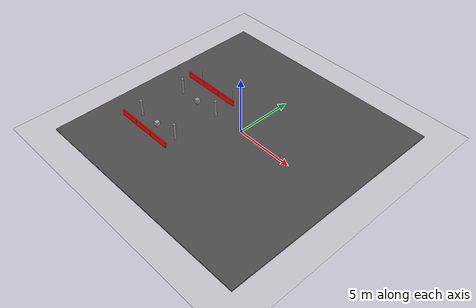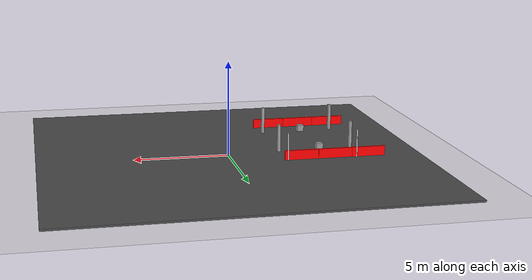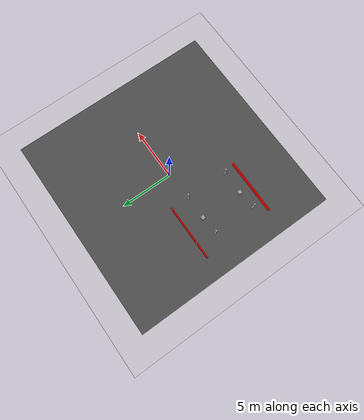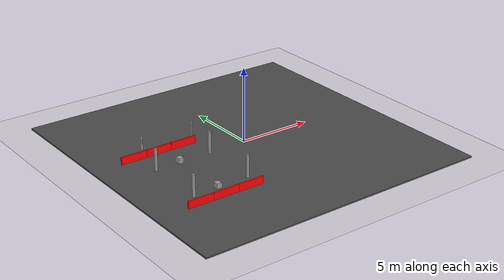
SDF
<sdf version="1.7">
 <world name="default">
  <model name="ground_plane">
   <static>1</static>
   <link name="link">
    <collision name="collision">
     <geometry><plane><normal>0 0 1</normal><size>100 100</size></plane></geometry>
     <surface><friction><ode><mu>100</mu><mu2>50</mu2></ode></friction></surface>
    </collision>
    <visual name="visual">
     <cast_shadows>0</cast_shadows>
     <geometry><plane><normal>0 0 1</normal><size>100 100</size></plane></geometry>
     <material>
      <script><uri>file://media/materials/scripts/gazebo.material</uri><name>Gazebo/Grey</name></script>
     </material>
    </visual>
   </link>
  </model>
  <model name="asphalt_plane">
   <static>1</static>
   <link name="link">
    <collision name="collision"><geometry><box><size>20 20 0.1</size></box></geometry></collision>
    <visual name="visual">
     <cast_shadows>0</cast_shadows>
     <geometry><box><size>20 20 0.1</size></box></geometry>
     <material>
      <script>
       <uri>model://asphalt_plane/materials/scripts</uri>
       <uri>model://asphalt_plane/materials/textures</uri>
       <name>vrc/asphalt</name>
      </script>
     </material>
    </visual>
    <velocity_decay><linear>0</linear><angular>0</angular></velocity_decay>
   </link>
   <pose>0.000359 -0.189252 0 0 -0 0</pose>
  </model>
  <model name="circular_reflector_0_clone_clone_0">
   <static>1</static>
   <pose>-2.75059 -0.124986 0 0 -0 0</pose>
   <link name="link">
    <inertial>
     <mass>1</mass>
     <inertia><ixx>0</ixx><ixy>0</ixy><ixz>0</ixz><iyy>0</iyy><iyz>0</iyz><izz>0</izz></inertia>
    </inertial>
    <collision name="collision">
     <laser_retro>1000</laser_retro>
     <geometry><cylinder><radius>0.05</radius><length>1</length></cylinder></geometry>
    </collision>
    <visual name="visual">
     <geometry><cylinder><radius>0.1</radius><length>3</length></cylinder></geometry>
     <material>
      <script><name>Gazebo/Grey</name><uri>file://media/materials/scripts/gazebo.material</uri></script>
      <ambient>1 1 1 1</ambient>
      <diffuse>1 1 1 1</diffuse>
      <specular>1 1 1 1</specular>
      <emissive>1 1 1 1</emissive>
     </material>
     <laser_retro>1000</laser_retro>
    </visual>
   </link>
  </model>
  <model name="circular_reflector_0_clone_clone_1">
   <static>1</static>
   <pose>-2.81115 -4.15818 0 0 -0 0</pose>
   <link name="link">
    <inertial>
     <mass>1</mass>
     <inertia><ixx>0</ixx><ixy>0</ixy><ixz>0</ixz><iyy>0</iyy><iyz>0</iyz><izz>0</izz></inertia>
    </inertial>
    <collision name="collision">
     <laser_retro>1000</laser_retro>
     <geometry><cylinder><radius>0.05</radius><length>1</length></cylinder></geometry>
    </collision>
    <visual name="visual">
     <geometry><cylinder><radius>0.1</radius><length>3</length></cylinder></geometry>
     <material>
      <script><name>Gazebo/Grey</name><uri>file://media/materials/scripts/gazebo.material</uri></script>
      <ambient>1 1 1 1</ambient>
      <diffuse>1 1 1 1</diffuse>
      <specular>1 1 1 1</specular>
      <emissive>1 1 1 1</emissive>
     </material>
     <laser_retro>1000</laser_retro>
    </visual>
   </link>
  </model>
  <model name="circular_reflector_0_clone_clone_2">
   <static>1</static>
   <pose>-6.70087 -0.164899 0 0 -0 0</pose>
   <link name="link">
    <inertial>
     <mass>1</mass>
     <inertia><ixx>0</ixx><ixy>0</ixy><ixz>0</ixz><iyy>0</iyy><iyz>0</iyz><izz>0</izz></inertia>
    </inertial>
    <collision name="collision">
     <laser_retro>1000</laser_retro>
     <geometry><cylinder><radius>0.05</radius><length>1</length></cylinder></geometry>
    </collision>
    <visual name="visual">
     <geometry><cylinder><radius>0.1</radius><length>3</length></cylinder></geometry>
     <material>
      <script><name>Gazebo/Grey</name><uri>file://media/materials/scripts/gazebo.material</uri></script>
      <ambient>1 1 1 1</ambient>
      <diffuse>1 1 1 1</diffuse>
      <specular>1 1 1 1</specular>
      <emissive>1 1 1 1</emissive>
     </material>
     <laser_retro>1000</laser_retro>
    </visual>
   </link>
  </model>
  <model name="circular_reflector_0_clone_clone_3">
   <static>1</static>
   <pose>-6.75978 -4.28292 0 0 -0 0</pose>
   <link name="link">
    <inertial>
     <mass>1</mass>
     <inertia><ixx>0</ixx><ixy>0</ixy><ixz>0</ixz><iyy>0</iyy><iyz>0</iyz><izz>0</izz></inertia>
    </inertial>
    <collision name="collision">
     <laser_retro>1000</laser_retro>
     <geometry><cylinder><radius>0.05</radius><length>1</length></cylinder></geometry>
    </collision>
    <visual name="visual">
     <geometry><cylinder><radius>0.1</radius><length>3</length></cylinder></geometry>
     <material>
      <script><name>Gazebo/Grey</name><uri>file://media/materials/scripts/gazebo.material</uri></script>
      <ambient>1 1 1 1</ambient>
      <diffuse>1 1 1 1</diffuse>
      <specular>1 1 1 1</specular>
      <emissive>1 1 1 1</emissive>
     </material>
     <laser_retro>1000</laser_retro>
    </visual>
   </link>
  </model>
  <model name="square_reflector_clone_0">
   <static>1</static>
   <pose>-5.00249 -4.18152 0.221803 0 -0 0</pose>
   <link name="link">
    <inertial>
     <mass>1</mass>
     <inertia><ixx>0</ixx><ixy>0</ixy><ixz>0</ixz><iyy>0</iyy><iyz>0</iyz><izz>0</izz></inertia>
    </inertial>
    <collision name="collision">
     <laser_retro>1000</laser_retro>
     <geometry><box><size>0.35 0.35 0.35</size></box></geometry>
    </collision>
    <visual name="visual">
     <geometry><box><size>0.35 0.35 0.35</size></box></geometry>
     <material>
      <script><name>Gazebo/Grey</name><uri>file://media/materials/scripts/gazebo.material</uri></script>
      <ambient>1 1 1 1</ambient>
      <diffuse>1 1 1 1</diffuse>
      <specular>1 1 1 1</specular>
      <emissive>1 1 1 1</emissive>
     </material>
     <laser_retro>1000</laser_retro>
    </visual>
   </link>
  </model>
  <model name="square_reflector_clone_1">
   <static>1</static>
   <pose>-4.96846 -0.121047 0.221803 0 -0 0</pose>
   <link name="link">
    <inertial>
     <mass>1</mass>
     <inertia><ixx>0</ixx><ixy>0</ixy><ixz>0</ixz><iyy>0</iyy><iyz>0</iyz><izz>0</izz></inertia>
    </inertial>
    <collision name="collision">
     <laser_retro>1000</laser_retro>
     <geometry><box><size>0.35 0.35 0.35</size></box></geometry>
    </collision>
    <visual name="visual">
     <geometry><box><size>0.35 0.35 0.35</size></box></geometry>
     <material>
      <script><name>Gazebo/Grey</name><uri>file://media/materials/scripts/gazebo.material</uri></script>
      <ambient>1 1 1 1</ambient>
      <diffuse>1 1 1 1</diffuse>
      <specular>1 1 1 1</specular>
      <emissive>1 1 1 1</emissive>
     </material>
     <laser_retro>1000</laser_retro>
    </visual>
   </link>
  </model>
  <model name="barrier_w_reflector_clone_7">
   <static>1</static>
   <pose>-3.42278 -5.3127 0.292208 0 -0 0</pose>
   <link name="link">
    <inertial>
     <mass>1</mass>
     <inertia><ixx>0</ixx><ixy>0</ixy><ixz>0</ixz><iyy>0</iyy><iyz>0</iyz><izz>0</izz></inertia>
    </inertial>
    <collision name="collision">
     <laser_retro>1000</laser_retro>
     <geometry><box><size>1.8 0.1 0.5</size></box></geometry>
    </collision>
    <visual name="visual">
     <geometry><box><size>1.8 0.1 0.5</size></box></geometry>
     <material>
      <ambient>1 0 0 1</ambient>
      <diffuse>1 0 0 1</diffuse>
      <specular>1 0 0 1</specular>
      <emissive>1 0 0 1</emissive>
     </material>
     <laser_retro>1000</laser_retro>
    </visual>
   </link>
  </model>
  <model name="barrier_w_reflector_clone_8">
   <static>1</static>
   <pose>-5.1807 -5.30943 0.292208 0 -0 0</pose>
   <link name="link">
    <inertial>
     <mass>1</mass>
     <inertia><ixx>0</ixx><ixy>0</ixy><ixz>0</ixz><iyy>0</iyy><iyz>0</iyz><izz>0</izz></inertia>
    </inertial>
    <collision name="collision">
     <laser_retro>1000</laser_retro>
     <geometry><box><size>1.8 0.1 0.5</size></box></geometry>
    </collision>
    <visual name="visual">
     <geometry><box><size>1.8 0.1 0.5</size></box></geometry>
     <material>
      <ambient>1 0 0 1</ambient>
      <diffuse>1 0 0 1</diffuse>
      <specular>1 0 0 1</specular>
      <emissive>1 0 0 1</emissive>
     </material>
     <laser_retro>1000</laser_retro>
    </visual>
   </link>
  </model>
  <model name="barrier_w_reflector_clone_9">
   <static>1</static>
   <pose>-6.92869 -5.30525 0.292208 0 -0 0</pose>
   <link name="link">
    <inertial>
     <mass>1</mass>
     <inertia><ixx>0</ixx><ixy>0</ixy><ixz>0</ixz><iyy>0</iyy><iyz>0</iyz><izz>0</izz></inertia>
    </inertial>
    <collision name="collision">
     <laser_retro>1000</laser_retro>
     <geometry><box><size>1.8 0.1 0.5</size></box></geometry>
    </collision>
    <visual name="visual">
     <geometry><box><size>1.8 0.1 0.5</size></box></geometry>
     <material>
      <ambient>1 0 0 1</ambient>
      <diffuse>1 0 0 1</diffuse>
      <specular>1 0 0 1</specular>
      <emissive>1 0 0 1</emissive>
     </material>
     <laser_retro>1000</laser_retro>
    </visual>
   </link>
  </model>
  <model name="barrier_clone_3">
   <static>1</static>
   <pose>-3.52993 1.66781 0.312489 0 -0 0</pose>
   <link name="link">
    <inertial>
     <mass>1</mass>
     <inertia><ixx>0</ixx><ixy>0</ixy><ixz>0</ixz><iyy>0</iyy><iyz>0</iyz><izz>0</izz></inertia>
    </inertial>
    <collision name="collision"><geometry><box><size>1.8 0.1 0.5</size></box></geometry></collision>
    <visual name="visual">
     <geometry><box><size>1.8 0.1 0.5</size></box></geometry>
     <material>
      <ambient>1 0 0 1</ambient>
      <diffuse>1 0 0 1</diffuse>
      <specular>1 0 0 1</specular>
      <emissive>1 0 0 1</emissive>
     </material>
    </visual>
   </link>
  </model>
  <model name="barrier_clone_4">
   <static>1</static>
   <pose>-5.33704 1.66812 0.312489 0 -0 0</pose>
   <link name="link">
    <inertial>
     <mass>1</mass>
     <inertia><ixx>0</ixx><ixy>0</ixy><ixz>0</ixz><iyy>0</iyy><iyz>0</iyz><izz>0</izz></inertia>
    </inertial>
    <collision name="collision"><geometry><box><size>1.8 0.1 0.5</size></box></geometry></collision>
    <visual name="visual">
     <geometry><box><size>1.8 0.1 0.5</size></box></geometry>
     <material>
      <ambient>1 0 0 1</ambient>
      <diffuse>1 0 0 1</diffuse>
      <specular>1 0 0 1</specular>
      <emissive>1 0 0 1</emissive>
     </material>
    </visual>
   </link>
  </model>
  <model name="barrier_clone_5">
   <static>1</static>
   <pose>-7.12858 1.66772 0.312489 0 -0 0</pose>
   <link name="link">
    <inertial>
     <mass>1</mass>
     <inertia><ixx>0</ixx><ixy>0</ixy><ixz>0</ixz><iyy>0</iyy><iyz>0</iyz><izz>0</izz></inertia>
    </inertial>
    <collision name="collision"><geometry><box><size>1.8 0.1 0.5</size></box></geometry></collision>
    <visual name="visual">
     <geometry><box><size>1.8 0.1 0.5</size></box></geometry>
     <material>
      <ambient>1 0 0 1</ambient>
      <diffuse>1 0 0 1</diffuse>
      <specular>1 0 0 1</specular>
      <emissive>1 0 0 1</emissive>
     </material>
    </visual>
   </link>
  </model>
  <model name="reflective_tape_5cm_clone_2_clone_6">
   <static>1</static>
   <pose>-6.49618 1.7183 0 0 -0 0</pose>
   <link name="link">
    <inertial>
     <mass>0.01</mass>
     <inertia><ixx>1e-06</ixx><ixy>0</ixy><ixz>0</ixz><iyy>1e-06</iyy><iyz>0</iyz><izz>1e-06</izz></inertia>
    </inertial>
    <collision name="collision">
     <laser_retro>1000</laser_retro>
     <geometry><box><size>0.05 0.005 3</size></box></geometry>
    </collision>
    <visual name="visual">
     <geometry><box><size>0.05 0.005 3</size></box></geometry>
     <material>
      <script><name>Gazebo/WhiteGlow</name><uri>file://media/materials/scripts/gazebo.material</uri></script>
      <ambient>1 1 1 1</ambient>
      <diffuse>1 1 1 1</diffuse>
      <specular>1 1 1 1</specular>
      <emissive>1 1 1 1</emissive>
     </material>
     <laser_retro>1000</laser_retro>
    </visual>
   </link>
  </model>
  <model name="reflective_tape_5cm_clone_2_clone_12">
   <static>1</static>
   <pose>-2.81332 1.71667 0 0 -0 0</pose>
   <link name="link">
    <inertial>
     <mass>0.01</mass>
     <inertia><ixx>1e-06</ixx><ixy>0</ixy><ixz>0</ixz><iyy>1e-06</iyy><iyz>0</iyz><izz>1e-06</izz></inertia>
    </inertial>
    <collision name="collision">
     <laser_retro>1000</laser_retro>
     <geometry><box><size>0.05 0.005 3</size></box></geometry>
    </collision>
    <visual name="visual">
     <geometry><box><size>0.05 0.005 3</size></box></geometry>
     <material>
      <script><name>Gazebo/WhiteGlow</name><uri>file://media/materials/scripts/gazebo.material</uri></script>
      <ambient>1 1 1 1</ambient>
      <diffuse>1 1 1 1</diffuse>
      <specular>1 1 1 1</specular>
      <emissive>1 1 1 1</emissive>
     </material>
     <laser_retro>1000</laser_retro>
    </visual>
   </link>
  </model>
 </world>
</sdf>
